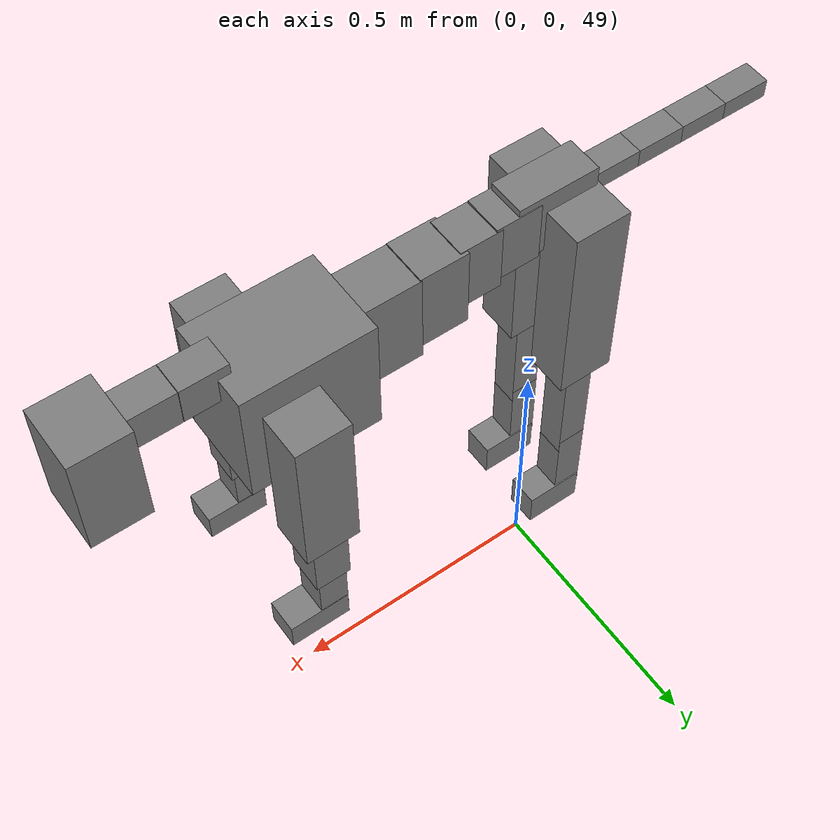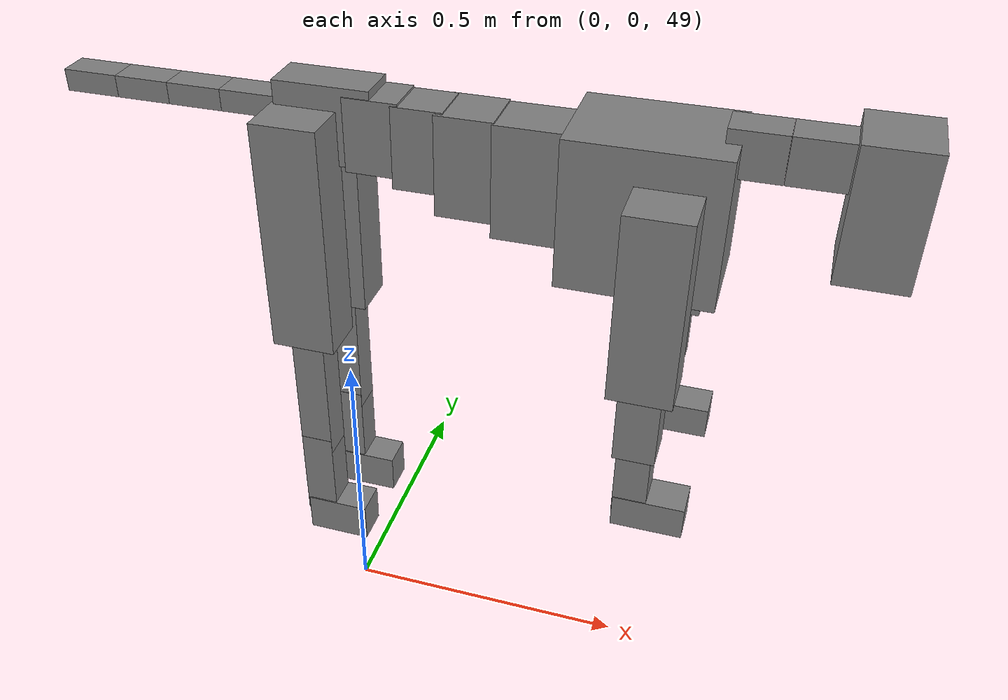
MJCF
<mujoco model="dog">

    <default>
        <joint armature="0.02" stiffness="1" damping="0.2" limited="true"/>
        <geom condim="3" friction="1 0.05 0.05" margin="0.01"/>
        <motor ctrllimited="true" ctrlrange="-1.0 1.0" forcelimited="true" gear="50"/>
    </default>

    <compiler inertiafromgeom="true" angle="radian"/>

    <option timestep="0.016" iterations="50" tolerance="1e-10" solver="Newton" jacobian="dense" cone="pyramidal"/>

    <size nconmax="20000" njmax="60000" nstack="5000000"/>
    <visual>
        <map force="0.1" zfar="30"/>
        <rgba haze="0.15 0.25 0.35 1"/>
        <quality shadowsize="2048"/>
        <global offwidth="800" offheight="800"/>
    </visual>

    <asset>
        <texture type="skybox" builtin="gradient" rgb1="0.3 0.5 0.7" rgb2="0 0 0" width="512" height="512"/>
        <texture name="texplane" type="2d" builtin="checker" rgb1=".2 .3 .4" rgb2=".1 0.15 0.2" width="512" height="512"
                 mark="cross" markrgb=".8 .8 .8"/>
        <texture name="texgeom" type="cube" builtin="flat" mark="cross" width="127" height="1278" rgb1="0.8 0.6 0.4"
                 rgb2="0.8 0.6 0.4" markrgb="1 1 1" random="0.01"/>

        <material name="matplane" reflectance="0.3" texture="texplane" texrepeat="1 1" texuniform="true"/>
        <material name="matgeom" texture="texgeom" texuniform="true" rgba="0.8 0.6 .4 1"/>
    </asset>

    <worldbody>
        <geom name="floor" pos="0 0 0" size="0 0 .25" type="plane" material="matplane" condim="3"/>

        <light directional="false" diffuse=".2 .2 .2" specular="0 0 0" pos="0 0 5" dir="0 0 -1" castshadow="false"/>
        <light mode="targetbodycom" target="torso" directional="false" diffuse=".8 .8 .8" specular="0.3 0.3 0.3"
               pos="0 0 4.0" dir="0 0 -1"/>

        <body name="root" pos="0 0 50">
            <freejoint name="root_1"/>
            <geom type="box" pos="0 0 -0.02" size="0.0774  0.0358  0.063" density="2030"/>

            <body name="spine1" pos="0.054 0 0">
                <joint name="spine1_y" axis="0 1 0" range="0 0.7" limited="true"/>
                <geom type="box" pos="0.02375 0 -0.03" size="0.04375  0.0375  0.05985" density="2030"/>

                <body name="spine2" pos="0.0612 0 0">
                    <joint name="spine2_y" axis="0 1 0" range="-0.15 0.15" limited="true"/>
                    <geom type="box" pos="0.03555  0  -0.04" size="0.04055  0.039  0.06615" density="2030"/>

                    <body name="spine3" pos="0.0730 0 0">
                        <joint name="spine3_y" axis="0 1 0" range="-0.15 0.15" limited="true"/>
                        <geom type="box" pos="0.03555  0  -0.057" size="0.04555  0.0445  0.081" density="2030"/>

                        <body name="spine4" pos="0.0780 0 0">
                            <joint name="spine4_y" axis="0 1 0" range="-0.15 0.15" limited="true"/>
                            <geom type="box" pos="0.05265  0  -0.07" size="0.05265  0.045  0.09135" density="2030"/>

                            <body name="torso" pos="0.1082 0 0">
                                <joint name="torso_y" axis="0 1 0" range="-0.15 0.15" limited="true"/>
                                <geom type="box" pos="0.11925  0  -0.085" size="0.11925  0.085  0.11745"
                                      density="2030"/>

                                <body name="neck1" pos="0.2160  0   0.0180">
                                    <joint name="neck1_y" axis="0 1 0" range="-1.2  -1" limited="true"/>
                                    <geom type="box" pos="0.0423  0  0" size="0.0423  0.03  0.036" density="2325"/>

                                    <body name="neck2" pos="0.0853  0  0">
                                        <joint name="neck2_y" axis="0 1 0" range="0.1  0" limited="true"/>
                                        <geom type="box" pos="0.0423  0  0" size="0.0423  0.03  0.036" density="2325"/>

                                        <body name="head" pos="0.0853  0  0">
                                            <joint name="head_y" axis="0 1 0" range="-0.3  -0.2" limited="true"/>
                                            <geom type="box" pos="0.0531  0  -0.055" size="0.0531  0.06  0.1044"
                                                  density="4030"/>

                                        </body>
                                    </body>
                                </body>

                                <body name="front_shoulder" pos="0.156  0   -0.0480">
                                    <joint name="front_shoulder_y" axis="0 1 0" range="-1 1.5" limited="true"/>
                                    <geom type="box" pos="0 0.13 -0.1243" size="0.0496  0.0424  0.1510" density="1158"/>
                                    <geom type="box" pos="0 -0.13 -0.1243" size="0.0496  0.0424  0.1510"
                                          density="1158"/>

                                    <body name="front_elbow" pos="0  0  -0.2486">
                                        <joint name="front_elbow_y" axis="0 1 0" range="-2 0" limited="true"/>
                                        <geom type="box" pos="0 0.13 -0.0710" size="0.0326  0.0334  0.0710"
                                              density="1081"/>
                                        <geom type="box" pos="0 -0.13 -0.0710" size="0.0326  0.0334  0.0710"
                                              density="1081"/>

                                        <body name="front_wrist" pos="0  0  -0.1420">
                                            <joint name="front_wrist_y" axis="0 1 0" range="-0.2 0" limited="true"/>
                                            <geom type="box" pos="0 0.13 -0.0481" size="0.0266  0.0296  0.0613"
                                                  density="1664"/>
                                            <geom type="box" pos="0 -0.13 -0.0481" size="0.0266  0.0296  0.0613"
                                                  density="1664"/>

                                            <body name="front_finger_end" pos="0  0  -0.0963">
                                                <joint name="front_finger_y" axis="0 1 0" range="-0.4 1"
                                                       limited="true"/>
                                                <geom type="box" pos="0.0308  0.13  -0.0126"
                                                      size="0.0565  0.0308  0.0276" density="1515"/>
                                                <geom type="box" pos="0.0308  -0.13  -0.0126"
                                                      size="0.0565  0.0308  0.0276" density="1515"/>

                                            </body>

                                        </body>
                                    </body>
                                </body>

                            </body>
                        </body>
                    </body>
                </body>
            </body>

            <body name="back_hip" pos="-0.03 0 -0.018">
                <joint name="back_hip_y" axis="0 1 0" range="-1.5 0.3" limited="true"/>
                <geom type="box" pos="0 0.07 -0.1714" size="0.0531  0.0416  0.1942" density="1154"/>
                <geom type="box" pos="0 -0.07 -0.1714" size="0.0531  0.0416  0.1942" density="1154"/>

                <body name="back_knee" pos="0  0  -0.3428">
                    <joint name="back_knee_y" axis="0 1 0" range="0 2.8" limited="true"/>
                    <geom type="box" pos="0 0.07 -0.1182" size="0.0276  0.0272  0.1337" density="1227"/>
                    <geom type="box" pos="0 -0.07 -0.1182" size="0.0276  0.0272  0.1337" density="1227"/>

                    <body name="back_ankle" pos="0  0  -0.2364">
                        <joint name="back_ankle_y" axis="0 1 0" range="-2.2 0" limited="true"/>
                        <geom type="box" pos="0 0.07 -0.0732" size="0.0274  0.0274  0.0844" density="1284"/>
                        <geom type="box" pos="0 -0.07 -0.0732" size="0.0274  0.0274  0.0844" density="1284"/>

                        <body name="back_toe_end" pos="0  0  -0.1463">
                            <joint name="back_toe_y" axis="0 1 0" range="-0.4 1" limited="true"/>
                            <geom type="box" pos="0.0296  0.07  -0.0198" size="0.0542  0.0296  0.0348" density="1515"/>
                            <geom type="box" pos="0.0296  -0.07  -0.0198" size="0.0542  0.0296  0.0348" density="1515"/>

                        </body>
                    </body>
                </body>
            </body>

            <body name="tail1" pos="-0.074 0 -0.006">
                <joint name="tail1_y" axis="0 1 0" range="-0.2 0.2" limited="true"/>
                <geom type="box" pos="-0.0536  0  0" size="0.045  0.025  0.0175" density="1587"/>

                <body name="tail2" pos="-0.09 0 0">
                    <joint name="tail2_y" axis="0 1 0" range="-0.2 0.2" limited="true"/>
                    <geom type="box" pos="-0.0536  0  0" size="0.045  0.025  0.0175" density="1587"/>

                    <body name="tail3" pos="-0.09 0 0">
                        <joint name="tail3_y" axis="0 1 0" range="-0.2 0.2" limited="true"/>
                        <geom type="box" pos="-0.0536  0  0" size="0.045  0.025  0.0175" density="1587"/>

                        <body name="tail4" pos="-0.09 0 0">
                            <joint name="tail4_y" axis="0 1 0" range="-0.2 0.2" limited="true"/>
                            <geom type="box" pos="-0.0536  0  0" size="0.045  0.025  0.0175" density="1587"/>

                        </body>
                    </body>
                </body>
            </body>
        </body>
    </worldbody>

    <actuator>
        <motor joint="spine1_y" forcerange="-150 150     "/>
        <motor joint="spine2_y" forcerange="-150 150     "/>
        <motor joint="spine3_y" forcerange="-150 150     "/>
        <motor joint="spine4_y" forcerange="-150 150     "/>
        <motor joint="torso_y" forcerange="-150 150     "/>
        <motor joint="neck1_y" forcerange="-100 100       "/>
        <motor joint="neck2_y" forcerange="-100 100       "/>
        <motor joint="head_y" forcerange="-150 150       "/>
        <motor joint="front_shoulder_y" forcerange="-186.65 196.15"/>
        <motor joint="front_elbow_y" forcerange="-185.96 156.79"/>
        <motor joint="front_wrist_y" forcerange="-93.95 142.90"/>
        <motor joint="front_finger_y" forcerange="-75.90 48.59"/>
        <motor joint="back_hip_y" forcerange="-370.25 384.85"/>
        <motor joint="back_knee_y" forcerange="-280.25 315.27"/>
        <motor joint="back_angle_y" forcerange="-94.88 244.00"/>
        <motor joint="back_toe_y" forcerange="-126.50 30.03"/>
        <motor joint="tail1_y" forcerange="-50 50     "/>
        <motor joint="tail2_y" forcerange="-50 50     "/>
        <motor joint="tail3_y" forcerange="-50 50     "/>
        <motor joint="tail4_y" forcerange="-50 50     "/>
    </actuator>
</mujoco>
